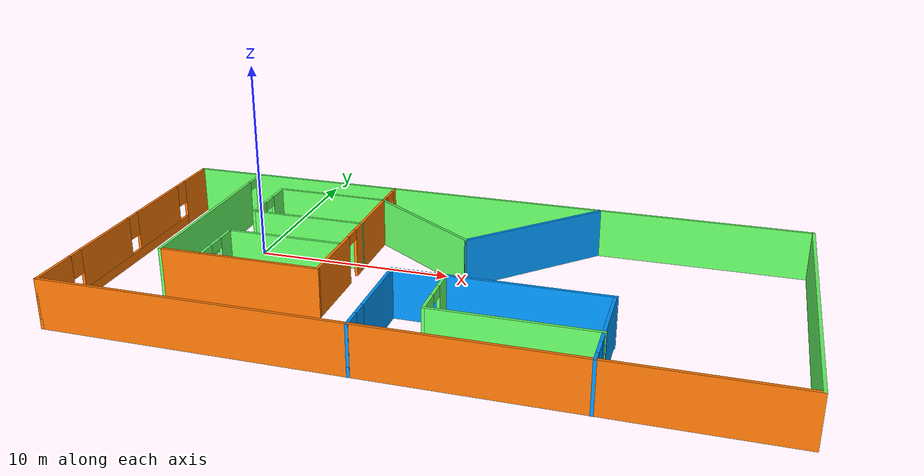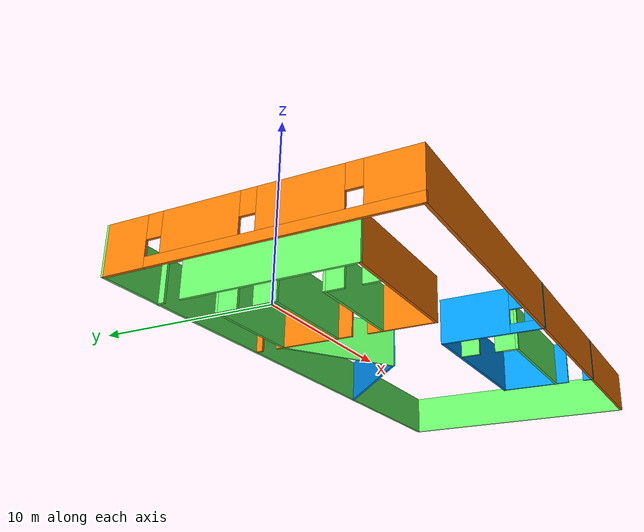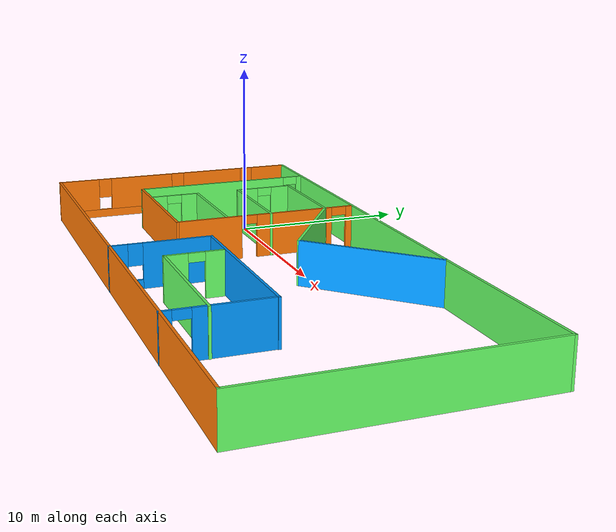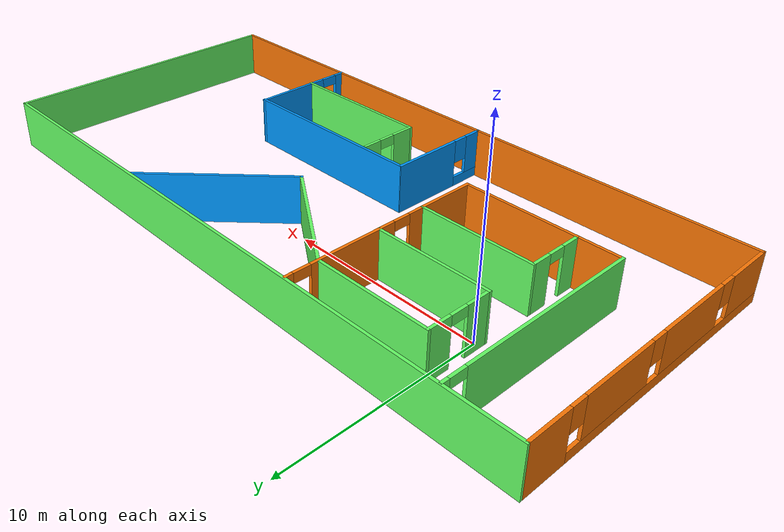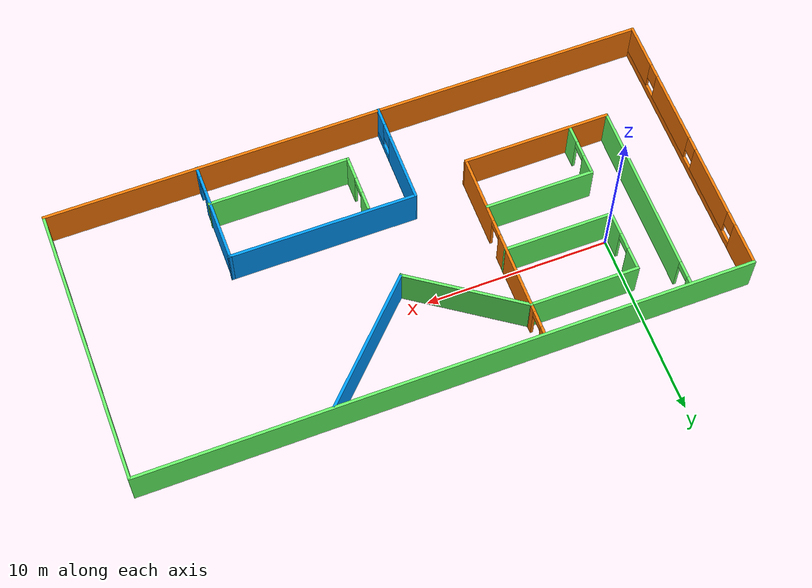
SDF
<?xml version='1.0'?>
<sdf version='1.6'>
  <model name='building'>
    <pose frame=''>10.6504 -2.82395 0 0 -0 0</pose>
    <link name='Wall_0'>
      <pose frame=''>-16.55 -0.032838 0 0 0 -1.5708</pose>
      <visual name='Wall_0_Visual_0'>
        <pose frame=''>-6.49529 0 1.25 0 -0 0</pose>
        <geometry>
          <box>
            <size>2.27633 0.15 2.5</size>
          </box>
        </geometry>
        <material>
          <script>
            <uri>file://media/materials/scripts/gazebo.material</uri>
            <name>Gazebo/Grey</name>
	  </script>
          <ambient>0.996078 0.47451 0.0196078 1</ambient>
        </material>
        <meta>
          <layer>0</layer>
        </meta>
      </visual>
      <collision name='Wall_0_Collision_0'>
        <geometry>
          <box>
            <size>2.27633 0.15 2.5</size>
          </box>
        </geometry>
        <pose frame=''>-6.49529 0 1.25 0 -0 0</pose>
      </collision>
      <visual name='Wall_0_Visual_1'>
        <pose frame=''>1.13817 0 0.25 0 -0 0</pose>
        <geometry>
          <box>
            <size>12.9906 0.15 0.5</size>
          </box>
        </geometry>
        <material>
          <script>
            <uri>file://media/materials/scripts/gazebo.material</uri>
            <name>Gazebo/Grey</name>
          </script>
          <ambient>0.996078 0.47451 0.0196078 1</ambient>
        </material>
        <meta>
          <layer>0</layer>
        </meta>
      </visual>
      <collision name='Wall_0_Collision_1'>
        <geometry>
          <box>
            <size>12.9906 0.15 0.5</size>
          </box>
        </geometry>
        <pose frame=''>1.13817 0 0.25 0 -0 0</pose>
      </collision>
      <visual name='Wall_0_Visual_2'>
        <pose frame=''>-2.56311 0 1.5 0 -0 0</pose>
        <geometry>
          <box>
            <size>3.98804 0.15 2</size>
          </box>
        </geometry>
        <material>
          <script>
            <uri>file://media/materials/scripts/gazebo.material</uri>
            <name>Gazebo/Grey</name>
          </script>
          <ambient>0.996078 0.47451 0.0196078 1</ambient>
        </material>
        <meta>
          <layer>0</layer>
        </meta>
      </visual>
      <collision name='Wall_0_Collision_2'>
        <geometry>
          <box>
            <size>3.98804 0.15 2</size>
          </box>
        </geometry>
        <pose frame=''>-2.56311 0 1.5 0 -0 0</pose>
      </collision>
      <visual name='Wall_0_Visual_3'>
        <pose frame=''>2.25962 0 1.5 0 -0 0</pose>
        <geometry>
          <box>
            <size>4.05743 0.15 2</size>
          </box>
        </geometry>
        <material>
          <script>
            <uri>file://media/materials/scripts/gazebo.material</uri>
            <name>Gazebo/Grey</name>
          </script>
          <ambient>0.996078 0.47451 0.0196078 1</ambient>
        </material>
        <meta>
          <layer>0</layer>
        </meta>
      </visual>
      <collision name='Wall_0_Collision_3'>
        <geometry>
          <box>
            <size>4.05743 0.15 2</size>
          </box>
        </geometry>
        <pose frame=''>2.25962 0 1.5 0 -0 0</pose>
      </collision>
      <visual name='Wall_0_Visual_4'>
        <pose frame=''>6.3609 0 1.5 0 -0 0</pose>
        <geometry>
          <box>
            <size>2.54512 0.15 2</size>
          </box>
        </geometry>
        <material>
          <script>
            <uri>file://media/materials/scripts/gazebo.material</uri>
            <name>Gazebo/Grey</name>
          </script>
          <ambient>0.996078 0.47451 0.0196078 1</ambient>
        </material>
        <meta>
          <layer>0</layer>
        </meta>
      </visual>
      <collision name='Wall_0_Collision_4'>
        <geometry>
          <box>
            <size>2.54512 0.15 2</size>
          </box>
        </geometry>
        <pose frame=''>6.3609 0 1.5 0 -0 0</pose>
      </collision>
      <visual name='Wall_0_Visual_5'>
        <pose frame=''>-4.95713 0 1.9 0 -0 0</pose>
        <geometry>
          <box>
            <size>0.8 0.15 1.2</size>
          </box>
        </geometry>
        <material>
          <script>
            <uri>file://media/materials/scripts/gazebo.material</uri>
            <name>Gazebo/Grey</name>
          </script>
          <ambient>0.996078 0.47451 0.0196078 1</ambient>
        </material>
        <meta>
          <layer>0</layer>
        </meta>
      </visual>
      <collision name='Wall_0_Collision_5'>
        <geometry>
          <box>
            <size>0.8 0.15 1.2</size>
          </box>
        </geometry>
        <pose frame=''>-4.95713 0 1.9 0 -0 0</pose>
      </collision>
      <visual name='Wall_0_Visual_6'>
        <pose frame=''>-0.169093 0 1.9 0 -0 0</pose>
        <geometry>
          <box>
            <size>0.8 0.15 1.2</size>
          </box>
        </geometry>
        <material>
          <script>
            <uri>file://media/materials/scripts/gazebo.material</uri>
            <name>Gazebo/Grey</name>
          </script>
          <ambient>0.996078 0.47451 0.0196078 1</ambient>
        </material>
        <meta>
          <layer>0</layer>
        </meta>
      </visual>
      <collision name='Wall_0_Collision_6'>
        <geometry>
          <box>
            <size>0.8 0.15 1.2</size>
          </box>
        </geometry>
        <pose frame=''>-0.169093 0 1.9 0 -0 0</pose>
      </collision>
      <visual name='Wall_0_Visual_7'>
        <pose frame=''>4.68834 0 1.9 0 -0 0</pose>
        <geometry>
          <box>
            <size>0.8 0.15 1.2</size>
          </box>
        </geometry>
        <material>
          <script>
            <uri>file://media/materials/scripts/gazebo.material</uri>
            <name>Gazebo/Grey</name>
          </script>
          <ambient>0.996078 0.47451 0.0196078 1</ambient>
        </material>
        <meta>
          <layer>0</layer>
        </meta>
      </visual>
      <collision name='Wall_0_Collision_7'>
        <geometry>
          <box>
            <size>0.8 0.15 1.2</size>
          </box>
        </geometry>
        <pose frame=''>4.68834 0 1.9 0 -0 0</pose>
      </collision>
    </link>
    <link name='Wall_1'>
      <collision name='Wall_1_Collision'>
        <geometry>
          <box>
            <size>33.25 0.15 2.5</size>
          </box>
        </geometry>
        <pose frame=''>0 0 1.25 0 -0 0</pose>
      </collision>
      <visual name='Wall_1_Visual'>
        <pose frame=''>0 0 1.25 0 -0 0</pose>
        <geometry>
          <box>
            <size>33.25 0.15 2.5</size>
          </box>
        </geometry>
        <material>
          <script>
            <uri>file://media/materials/scripts/gazebo.material</uri>
            <name>Gazebo/Grey</name>
          </script>
          <ambient>0.996078 0.47451 0.0196078 1</ambient>
        </material>
        <meta>
          <layer>0</layer>
        </meta>
      </visual>
      <pose frame=''>0 -7.5913 0 0 -0 0</pose>
    </link>
    <link name='Wall_12'>
      <pose frame=''>-5.03542 2.22406 0 0 0 -1.5708</pose>
      <visual name='Wall_12_Visual_0'>
        <pose frame=''>-5.14797 0 1.25 0 -0 0</pose>
        <geometry>
          <box>
            <size>0.45406 0.15 2.5</size>
          </box>
        </geometry>
        <material>
          <script>
            <uri>file://media/materials/scripts/gazebo.material</uri>
            <name>Gazebo/Grey</name>
          </script>
          <ambient>0.996078 0.47451 0.0196078 1</ambient>
        </material>
        <meta>
          <layer>0</layer>
        </meta>
      </visual>
      <collision name='Wall_12_Collision_0'>
        <geometry>
          <box>
            <size>0.45406 0.15 2.5</size>
          </box>
        </geometry>
        <pose frame=''>-5.14797 0 1.25 0 -0 0</pose>
      </collision>
      <visual name='Wall_12_Visual_1'>
        <pose frame=''>-1.70616 0 1.25 0 -0 0</pose>
        <geometry>
          <box>
            <size>4.62955 0.15 2.5</size>
          </box>
        </geometry>
        <material>
          <script>
            <uri>file://media/materials/scripts/gazebo.material</uri>
            <name>Gazebo/Grey</name>
          </script>
          <ambient>0.996078 0.47451 0.0196078 1</ambient>
        </material>
        <meta>
          <layer>0</layer>
        </meta>
      </visual>
      <collision name='Wall_12_Collision_1'>
        <geometry>
          <box>
            <size>4.62955 0.15 2.5</size>
          </box>
        </geometry>
        <pose frame=''>-1.70616 0 1.25 0 -0 0</pose>
      </collision>
      <visual name='Wall_12_Visual_2'>
        <pose frame=''>3.44181 0 1.25 0 -0 0</pose>
        <geometry>
          <box>
            <size>3.86639 0.15 2.5</size>
          </box>
        </geometry>
        <material>
          <script>
            <uri>file://media/materials/scripts/gazebo.material</uri>
            <name>Gazebo/Grey</name>
          </script>
          <ambient>0.996078 0.47451 0.0196078 1</ambient>
        </material>
        <meta>
          <layer>0</layer>
        </meta>
      </visual>
      <collision name='Wall_12_Collision_2'>
        <geometry>
          <box>
            <size>3.86639 0.15 2.5</size>
          </box>
        </geometry>
        <pose frame=''>3.44181 0 1.25 0 -0 0</pose>
      </collision>
      <visual name='Wall_12_Visual_3'>
        <pose frame=''>-4.47094 0 2.25 0 -0 0</pose>
        <geometry>
          <box>
            <size>0.9 0.15 0.5</size>
          </box>
        </geometry>
        <material>
          <script>
            <uri>file://media/materials/scripts/gazebo.material</uri>
            <name>Gazebo/Grey</name>
          </script>
          <ambient>0.996078 0.47451 0.0196078 1</ambient>
        </material>
        <meta>
          <layer>0</layer>
        </meta>
      </visual>
      <collision name='Wall_12_Collision_3'>
        <geometry>
          <box>
            <size>0.9 0.15 0.5</size>
          </box>
        </geometry>
        <pose frame=''>-4.47094 0 2.25 0 -0 0</pose>
      </collision>
      <visual name='Wall_12_Visual_4'>
        <pose frame=''>1.05861 0 2.25 0 -0 0</pose>
        <geometry>
          <box>
            <size>0.9 0.15 0.5</size>
          </box>
        </geometry>
        <material>
          <script>
            <uri>file://media/materials/scripts/gazebo.material</uri>
            <name>Gazebo/Grey</name>
          </script>
          <ambient>0.996078 0.47451 0.0196078 1</ambient>
        </material>
        <meta>
          <layer>0</layer>
        </meta>
      </visual>
      <collision name='Wall_12_Collision_4'>
        <geometry>
          <box>
            <size>0.9 0.15 0.5</size>
          </box>
        </geometry>
        <pose frame=''>1.05861 0 2.25 0 -0 0</pose>
      </collision>
    </link>
    <link name='Wall_13'>
      <collision name='Wall_13_Collision'>
        <geometry>
          <box>
            <size>8.121 0.15 2.5</size>
          </box>
        </geometry>
        <pose frame=''>0 0 1.25 0 -0 0</pose>
      </collision>
      <visual name='Wall_13_Visual'>
        <pose frame=''>0 0 1.25 0 -0 0</pose>
        <geometry>
          <box>
            <size>8.121 0.15 2.5</size>
          </box>
        </geometry>
        <material>
          <script>
            <uri>file://media/materials/scripts/gazebo.material</uri>
            <name>Gazebo/Grey</name>
          </script>
          <ambient>0.996078 0.47451 0.0196078 1</ambient>
        </material>
        <meta>
          <layer>0</layer>
        </meta>
      </visual>
      <pose frame=''>-9.02092 -3.07594 0 0 -0 3.14159</pose>
    </link>
    <link name='Wall_14'>
      <pose frame=''>-13.0409 2.22406 0 0 -0 1.5708</pose>
      <visual name='Wall_14_Visual_0'>
        <pose frame=''>-0.656558 0 1.25 0 -0 0</pose>
        <geometry>
          <box>
            <size>9.43689 0.15 2.5</size>
          </box>
        </geometry>
        <material>
          <script>
            <uri>file://media/materials/scripts/gazebo.material</uri>
            <name>Gazebo/Grey</name>
          </script>
          <ambient>0.4 1 0.4 1</ambient>
        </material>
        <meta>
          <layer>0</layer>
        </meta>
      </visual>
      <collision name='Wall_14_Collision_0'>
        <geometry>
          <box>
            <size>9.43689 0.15 2.5</size>
          </box>
        </geometry>
        <pose frame=''>-0.656558 0 1.25 0 -0 0</pose>
      </collision>
      <visual name='Wall_14_Visual_1'>
        <pose frame=''>5.16844 0 1.25 0 -0 0</pose>
        <geometry>
          <box>
            <size>0.413115 0.15 2.5</size>
          </box>
        </geometry>
        <material>
          <script>
            <uri>file://media/materials/scripts/gazebo.material</uri>
            <name>Gazebo/Grey</name>
          </script>
          <ambient>0.4 1 0.4 1</ambient>
        </material>
        <meta>
          <layer>0</layer>
        </meta>
      </visual>
      <collision name='Wall_14_Collision_1'>
        <geometry>
          <box>
            <size>0.413115 0.15 2.5</size>
          </box>
        </geometry>
        <pose frame=''>5.16844 0 1.25 0 -0 0</pose>
      </collision>
      <visual name='Wall_14_Visual_2'>
        <pose frame=''>4.51189 0 2.25 0 -0 0</pose>
        <geometry>
          <box>
            <size>0.9 0.15 0.5</size>
          </box>
        </geometry>
        <material>
          <script>
            <uri>file://media/materials/scripts/gazebo.material</uri>
            <name>Gazebo/Grey</name>
          </script>
          <ambient>0.4 1 0.4 1</ambient>
        </material>
        <meta>
          <layer>0</layer>
        </meta>
      </visual>
      <collision name='Wall_14_Collision_2'>
        <geometry>
          <box>
            <size>0.9 0.15 0.5</size>
          </box>
        </geometry>
        <pose frame=''>4.51189 0 2.25 0 -0 0</pose>
      </collision>
    </link>
    <link name='Wall_16'>
      <collision name='Wall_16_Collision'>
        <geometry>
          <box>
            <size>6 0.15 2.5</size>
          </box>
        </geometry>
        <pose frame=''>0 0 1.25 0 -0 0</pose>
      </collision>
      <visual name='Wall_16_Visual'>
        <pose frame=''>0 0 1.25 0 -0 0</pose>
        <geometry>
          <box>
            <size>6 0.15 2.5</size>
          </box>
        </geometry>
        <material>
          <script>
            <uri>file://media/materials/scripts/gazebo.material</uri>
            <name>Gazebo/Grey</name>
          </script>
          <ambient>0.4 1 0.4 1</ambient>
        </material>
        <meta>
          <layer>0</layer>
        </meta>
      </visual>
      <pose frame=''>-7.99073 -0.155009 0 0 -0 3.14159</pose>
    </link>
    <link name='Wall_17'>
      <pose frame=''>-10.9157 -1.58001 0 0 0 -1.5708</pose>
      <visual name='Wall_17_Visual_0'>
        <pose frame=''>-0.944857 0 1.25 0 -0 0</pose>
        <geometry>
          <box>
            <size>1.11029 0.15 2.5</size>
          </box>
        </geometry>
        <material>
          <script>
            <uri>file://media/materials/scripts/gazebo.material</uri>
            <name>Gazebo/Grey</name>
          </script>
          <ambient>0.4 1 0.4 1</ambient>
        </material>
        <meta>
          <layer>0</layer>
        </meta>
      </visual>
      <collision name='Wall_17_Collision_0'>
        <geometry>
          <box>
            <size>1.11029 0.15 2.5</size>
          </box>
        </geometry>
        <pose frame=''>-0.944857 0 1.25 0 -0 0</pose>
      </collision>
      <visual name='Wall_17_Visual_1'>
        <pose frame=''>1.00514 0 1.25 0 -0 0</pose>
        <geometry>
          <box>
            <size>0.989714 0.15 2.5</size>
          </box>
        </geometry>
        <material>
          <script>
            <uri>file://media/materials/scripts/gazebo.material</uri>
            <name>Gazebo/Grey</name>
          </script>
          <ambient>0.4 1 0.4 1</ambient>
        </material>
        <meta>
          <layer>0</layer>
        </meta>
      </visual>
      <collision name='Wall_17_Collision_1'>
        <geometry>
          <box>
            <size>0.989714 0.15 2.5</size>
          </box>
        </geometry>
        <pose frame=''>1.00514 0 1.25 0 -0 0</pose>
      </collision>
      <visual name='Wall_17_Visual_2'>
        <pose frame=''>0.060286 0 2.25 0 -0 0</pose>
        <geometry>
          <box>
            <size>0.9 0.15 0.5</size>
          </box>
        </geometry>
        <material>
          <script>
            <uri>file://media/materials/scripts/gazebo.material</uri>
            <name>Gazebo/Grey</name>
          </script>
          <ambient>0.4 1 0.4 1</ambient>
        </material>
        <meta>
          <layer>0</layer>
        </meta>
      </visual>
      <collision name='Wall_17_Collision_2'>
        <geometry>
          <box>
            <size>0.9 0.15 0.5</size>
          </box>
        </geometry>
        <pose frame=''>0.060286 0 2.25 0 -0 0</pose>
      </collision>
    </link>
    <link name='Wall_19'>
      <collision name='Wall_19_Collision'>
        <geometry>
          <box>
            <size>6 0.15 2.5</size>
          </box>
        </geometry>
        <pose frame=''>0 0 1.25 0 -0 0</pose>
      </collision>
      <visual name='Wall_19_Visual'>
        <pose frame=''>0 0 1.25 0 -0 0</pose>
        <geometry>
          <box>
            <size>6 0.15 2.5</size>
          </box>
        </geometry>
        <material>
          <script>
            <uri>file://media/materials/scripts/gazebo.material</uri>
            <name>Gazebo/Grey</name>
          </script>
          <ambient>0.4 1 0.4 1</ambient>
        </material>
        <meta>
          <layer>0</layer>
        </meta>
      </visual>
      <pose frame=''>-7.95065 2.47458 0 0 -0 3.14159</pose>
    </link>
    <link name='Wall_2'>
      <collision name='Wall_2_Collision'>
        <geometry>
          <box>
            <size>15.2859 0.15 2.5</size>
          </box>
        </geometry>
        <pose frame=''>0 0 1.25 0 -0 0</pose>
      </collision>
      <visual name='Wall_2_Visual'>
        <pose frame=''>0 0 1.25 0 -0 0</pose>
        <geometry>
          <box>
            <size>15.2859 0.15 2.5</size>
          </box>
        </geometry>
        <material>
          <script>
            <uri>file://media/materials/scripts/gazebo.material</uri>
            <name>Gazebo/Grey</name>
          </script>
          <ambient>0.4 1 0.4 1</ambient>
        </material>
        <meta>
          <layer>0</layer>
        </meta>
      </visual>
      <pose frame=''>16.55 -0.023322 0 0 -0 1.5708</pose>
    </link>
    <link name='Wall_20'>
      <pose frame=''>-10.8756 4.14957 0 0 -0 1.5708</pose>
      <visual name='Wall_20_Visual_0'>
        <pose frame=''>-1.08633 0 1.25 0 -0 0</pose>
        <geometry>
          <box>
            <size>1.32733 0.15 2.5</size>
          </box>
        </geometry>
        <material>
          <script>
            <uri>file://media/materials/scripts/gazebo.material</uri>
            <name>Gazebo/Grey</name>
          </script>
          <ambient>0.4 1 0.4 1</ambient>
        </material>
        <meta>
          <layer>0</layer>
        </meta>
      </visual>
      <collision name='Wall_20_Collision_0'>
        <geometry>
          <box>
            <size>1.32733 0.15 2.5</size>
          </box>
        </geometry>
        <pose frame=''>-1.08633 0 1.25 0 -0 0</pose>
      </collision>
      <visual name='Wall_20_Visual_1'>
        <pose frame=''>1.11367 0 1.25 0 -0 0</pose>
        <geometry>
          <box>
            <size>1.27266 0.15 2.5</size>
          </box>
        </geometry>
        <material>
          <script>
            <uri>file://media/materials/scripts/gazebo.material</uri>
            <name>Gazebo/Grey</name>
          </script>
          <ambient>0.4 1 0.4 1</ambient>
        </material>
        <meta>
          <layer>0</layer>
        </meta>
      </visual>
      <collision name='Wall_20_Collision_1'>
        <geometry>
          <box>
            <size>1.27266 0.15 2.5</size>
          </box>
        </geometry>
        <pose frame=''>1.11367 0 1.25 0 -0 0</pose>
      </collision>
      <visual name='Wall_20_Visual_2'>
        <pose frame=''>0.027335 0 2.25 0 -0 0</pose>
        <geometry>
          <box>
            <size>0.9 0.15 0.5</size>
          </box>
        </geometry>
        <material>
          <script>
            <uri>file://media/materials/scripts/gazebo.material</uri>
            <name>Gazebo/Grey</name>
          </script>
          <ambient>0.4 1 0.4 1</ambient>
        </material>
        <meta>
          <layer>0</layer>
        </meta>
      </visual>
      <collision name='Wall_20_Collision_2'>
        <geometry>
          <box>
            <size>0.9 0.15 0.5</size>
          </box>
        </geometry>
        <pose frame=''>0.027335 0 2.25 0 -0 0</pose>
      </collision>
    </link>
    <link name='Wall_21'>
      <collision name='Wall_21_Collision'>
        <geometry>
          <box>
            <size>6 0.15 2.5</size>
          </box>
        </geometry>
        <pose frame=''>0 0 1.25 0 -0 0</pose>
      </collision>
      <visual name='Wall_21_Visual'>
        <pose frame=''>0 0 1.25 0 -0 0</pose>
        <geometry>
          <box>
            <size>6 0.15 2.5</size>
          </box>
        </geometry>
        <material>
          <script>
            <uri>file://media/materials/scripts/gazebo.material</uri>
            <name>Gazebo/Grey</name>
          </script>
          <ambient>0.4 1 0.4 1</ambient>
        </material>
        <meta>
          <layer>0</layer>
        </meta>
      </visual>
      <pose frame=''>-7.95065 5.82458 0 0 -0 0</pose>
    </link>
    <link name='Wall_24'>
      <collision name='Wall_24_Collision'>
        <geometry>
          <box>
            <size>6.89799 0.15 2.5</size>
          </box>
        </geometry>
        <pose frame=''>0 0 1.25 0 -0 0</pose>
      </collision>
      <visual name='Wall_24_Visual'>
        <pose frame=''>0 0 1.25 0 -0 0</pose>
        <geometry>
          <box>
            <size>6.89799 0.15 2.5</size>
          </box>
        </geometry>
        <material>
          <script>
            <uri>file://media/materials/scripts/gazebo.material</uri>
            <name>Gazebo/Grey</name>
          </script>
          <ambient>0.4 1 0.4 1</ambient>
        </material>
        <meta>
          <layer>0</layer>
        </meta>
      </visual>
      <pose frame=''>-2.25514 3.89893 0 0 -0 2.53419</pose>
    </link>
    <link name='Wall_26'>
      <collision name='Wall_26_Collision'>
        <geometry>
          <box>
            <size>7.75 0.15 2.5</size>
          </box>
        </geometry>
        <pose frame=''>0 0 1.25 0 -0 0</pose>
      </collision>
      <visual name='Wall_26_Visual'>
        <pose frame=''>0 0 1.25 0 -0 0</pose>
        <geometry>
          <box>
            <size>7.75 0.15 2.5</size>
          </box>
        </geometry>
        <material>
          <script>
            <uri>file://media/materials/scripts/gazebo.material</uri>
            <name>Gazebo/Grey</name>
          </script>
          <ambient>0.4 1 0.4 1</ambient>
        </material>
        <meta>
          <layer>0</layer>
        </meta>
      </visual>
      <pose frame=''>4.50959 -5.36654 0 0 -0 3.14159</pose>
    </link>
    <link name='Wall_27'>
      <pose frame=''>0.709589 -3.81654 0 0 -0 1.5708</pose>
      <visual name='Wall_27_Visual_0'>
        <pose frame=''>-0.969836 0 1.25 0 -0 0</pose>
        <geometry>
          <box>
            <size>1.31033 0.15 2.5</size>
          </box>
        </geometry>
        <material>
          <script>
            <uri>file://media/materials/scripts/gazebo.material</uri>
            <name>Gazebo/Grey</name>
          </script>
          <ambient>0.4 1 0.4 1</ambient>
        </material>
        <meta>
          <layer>0</layer>
        </meta>
      </visual>
      <collision name='Wall_27_Collision_0'>
        <geometry>
          <box>
            <size>1.31033 0.15 2.5</size>
          </box>
        </geometry>
        <pose frame=''>-0.969836 0 1.25 0 -0 0</pose>
      </collision>
      <visual name='Wall_27_Visual_1'>
        <pose frame=''>1.10516 0 1.25 0 -0 0</pose>
        <geometry>
          <box>
            <size>1.03967 0.15 2.5</size>
          </box>
        </geometry>
        <material>
          <script>
            <uri>file://media/materials/scripts/gazebo.material</uri>
            <name>Gazebo/Grey</name>
          </script>
          <ambient>0.4 1 0.4 1</ambient>
        </material>
        <meta>
          <layer>0</layer>
        </meta>
      </visual>
      <collision name='Wall_27_Collision_1'>
        <geometry>
          <box>
            <size>1.03967 0.15 2.5</size>
          </box>
        </geometry>
        <pose frame=''>1.10516 0 1.25 0 -0 0</pose>
      </collision>
      <visual name='Wall_27_Visual_2'>
        <pose frame=''>0.135329 0 2.25 0 -0 0</pose>
        <geometry>
          <box>
            <size>0.9 0.15 0.5</size>
          </box>
        </geometry>
        <material>
          <script>
            <uri>file://media/materials/scripts/gazebo.material</uri>
            <name>Gazebo/Grey</name>
          </script>
          <ambient>0.4 1 0.4 1</ambient>
        </material>
        <meta>
          <layer>0</layer>
        </meta>
      </visual>
      <collision name='Wall_27_Collision_2'>
        <geometry>
          <box>
            <size>0.9 0.15 0.5</size>
          </box>
        </geometry>
        <pose frame=''>0.135329 0 2.25 0 -0 0</pose>
      </collision>
    </link>
    <link name='Wall_3'>
      <collision name='Wall_3_Collision'>
        <geometry>
          <box>
            <size>33.25 0.15 2.5</size>
          </box>
        </geometry>
        <pose frame=''>0 0 1.25 0 -0 0</pose>
      </collision>
      <visual name='Wall_3_Visual'>
        <pose frame=''>0 0 1.25 0 -0 0</pose>
        <geometry>
          <box>
            <size>33.25 0.15 2.5</size>
          </box>
        </geometry>
        <material>
          <script>
            <uri>file://media/materials/scripts/gazebo.material</uri>
            <name>Gazebo/Grey</name>
          </script>
          <ambient>0.4 1 0.4 1</ambient>
        </material>
        <meta>
          <layer>0</layer>
        </meta>
      </visual>
      <pose frame=''>0 7.59548 0 0 0 -3.14102</pose>
    </link>
    <link name='Wall_5'>
      <pose frame=''>8.26954 -4.84688 0 0 -0 1.5708</pose>
      <visual name='Wall_5_Visual_0'>
        <pose frame=''>-2.52337 0 1.25 0 -0 0</pose>
        <geometry>
          <box>
            <size>0.619563 0.15 2.5</size>
          </box>
        </geometry>
        <material>
          <script>
            <uri>file://media/materials/scripts/gazebo.material</uri>
            <name>Gazebo/Grey</name>
          </script>
          <ambient>0 0.6 1 1</ambient>
        </material>
        <meta>
          <layer>0</layer>
        </meta>
      </visual>
      <collision name='Wall_5_Collision_0'>
        <geometry>
          <box>
            <size>0.619563 0.15 2.5</size>
          </box>
        </geometry>
        <pose frame=''>-2.52337 0 1.25 0 -0 0</pose>
      </collision>
      <visual name='Wall_5_Visual_1'>
        <pose frame=''>0.759782 0 1.25 0 -0 0</pose>
        <geometry>
          <box>
            <size>4.14674 0.15 2.5</size>
          </box>
        </geometry>
        <material>
          <script>
            <uri>file://media/materials/scripts/gazebo.material</uri>
            <name>Gazebo/Grey</name>
          </script>
          <ambient>0 0.6 1 1</ambient>
        </material>
        <meta>
          <layer>0</layer>
        </meta>
      </visual>
      <collision name='Wall_5_Collision_1'>
        <geometry>
          <box>
            <size>4.14674 0.15 2.5</size>
          </box>
        </geometry>
        <pose frame=''>0.759782 0 1.25 0 -0 0</pose>
      </collision>
      <visual name='Wall_5_Visual_2'>
        <pose frame=''>-1.76359 0 2.25 0 -0 0</pose>
        <geometry>
          <box>
            <size>0.9 0.15 0.5</size>
          </box>
        </geometry>
        <material>
          <script>
            <uri>file://media/materials/scripts/gazebo.material</uri>
            <name>Gazebo/Grey</name>
          </script>
          <ambient>0 0.6 1 1</ambient>
        </material>
        <meta>
          <layer>0</layer>
        </meta>
      </visual>
      <collision name='Wall_5_Collision_2'>
        <geometry>
          <box>
            <size>0.9 0.15 0.5</size>
          </box>
        </geometry>
        <pose frame=''>-1.76359 0 2.25 0 -0 0</pose>
      </collision>
    </link>
    <link name='Wall_6'>
      <collision name='Wall_6_Collision'>
        <geometry>
          <box>
            <size>10.25 0.15 2.5</size>
          </box>
        </geometry>
        <pose frame=''>0 0 1.25 0 -0 0</pose>
      </collision>
      <visual name='Wall_6_Visual'>
        <pose frame=''>0 0 1.25 0 -0 0</pose>
        <geometry>
          <box>
            <size>10.25 0.15 2.5</size>
          </box>
        </geometry>
        <material>
          <script>
            <uri>file://media/materials/scripts/gazebo.material</uri>
            <name>Gazebo/Grey</name>
          </script>
          <ambient>0 0.6 1 1</ambient>
        </material>
        <meta>
          <layer>0</layer>
        </meta>
      </visual>
      <pose frame=''>3.26517 -2.08873 0 0 -0 3.14159</pose>
    </link>
    <link name='Wall_7'>
      <pose frame=''>-1.83046 -4.84688 0 0 0 -1.5708</pose>
      <visual name='Wall_7_Visual_0'>
        <pose frame=''>-0.915353 0 1.25 0 -0 0</pose>
        <geometry>
          <box>
            <size>3.8356 0.15 2.5</size>
          </box>
        </geometry>
        <material>
          <script>
            <uri>file://media/materials/scripts/gazebo.material</uri>
            <name>Gazebo/Grey</name>
          </script>
          <ambient>0 0.6 1 1</ambient>
        </material>
        <meta>
          <layer>0</layer>
        </meta>
      </visual>
      <collision name='Wall_7_Collision_0'>
        <geometry>
          <box>
            <size>3.8356 0.15 2.5</size>
          </box>
        </geometry>
        <pose frame=''>-0.915353 0 1.25 0 -0 0</pose>
      </collision>
      <visual name='Wall_7_Visual_1'>
        <pose frame=''>1.9178 0 0.25 0 -0 0</pose>
        <geometry>
          <box>
            <size>1.83071 0.15 0.5</size>
          </box>
        </geometry>
        <material>
          <script>
            <uri>file://media/materials/scripts/gazebo.material</uri>
            <name>Gazebo/Grey</name>
          </script>
          <ambient>0 0.6 1 1</ambient>
        </material>
        <meta>
          <layer>0</layer>
        </meta>
      </visual>
      <collision name='Wall_7_Collision_1'>
        <geometry>
          <box>
            <size>1.83071 0.15 0.5</size>
          </box>
        </geometry>
        <pose frame=''>1.9178 0 0.25 0 -0 0</pose>
      </collision>
      <visual name='Wall_7_Visual_2'>
        <pose frame=''>2.3178 0 1.5 0 -0 0</pose>
        <geometry>
          <box>
            <size>1.0307 0.15 2</size>
          </box>
        </geometry>
        <material>
          <script>
            <uri>file://media/materials/scripts/gazebo.material</uri>
            <name>Gazebo/Grey</name>
          </script>
          <ambient>0 0.6 1 1</ambient>
        </material>
        <meta>
          <layer>0</layer>
        </meta>
      </visual>
      <collision name='Wall_7_Collision_2'>
        <geometry>
          <box>
            <size>1.0307 0.15 2</size>
          </box>
        </geometry>
        <pose frame=''>2.3178 0 1.5 0 -0 0</pose>
      </collision>
      <visual name='Wall_7_Visual_3'>
        <pose frame=''>1.40245 0 1.9 0 -0 0</pose>
        <geometry>
          <box>
            <size>0.8 0.15 1.2</size>
          </box>
        </geometry>
        <material>
          <script>
            <uri>file://media/materials/scripts/gazebo.material</uri>
            <name>Gazebo/Grey</name>
          </script>
          <ambient>0 0.6 1 1</ambient>
        </material>
        <meta>
          <layer>0</layer>
        </meta>
      </visual>
      <collision name='Wall_7_Collision_3'>
        <geometry>
          <box>
            <size>0.8 0.15 1.2</size>
          </box>
        </geometry>
        <pose frame=''>1.40245 0 1.9 0 -0 0</pose>
      </collision>
    </link>
    <link name='Wall_9'>
      <collision name='Wall_9_Collision'>
        <geometry>
          <box>
            <size>8 0.15 2.5</size>
          </box>
        </geometry>
        <pose frame=''>0 0 1.25 0 -0 0</pose>
      </collision>
      <visual name='Wall_9_Visual'>
        <pose frame=''>0 0 1.25 0 -0 0</pose>
        <geometry>
          <box>
            <size>8 0.15 2.5</size>
          </box>
        </geometry>
        <material>
          <script>
            <uri>file://media/materials/scripts/gazebo.material</uri>
            <name>Gazebo/Grey</name>
          </script>
          <ambient>0 0.6 1 1</ambient>
        </material>
        <meta>
          <layer>0</layer>
        </meta>
      </visual>
      <pose frame=''>3.29076 4.74867 0 0 0 -2.35619</pose>
    </link>
    <static>1</static>
  </model>
</sdf>
